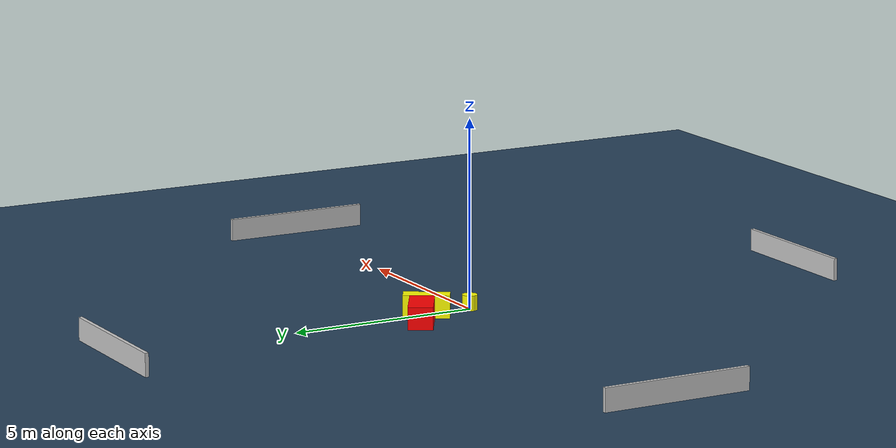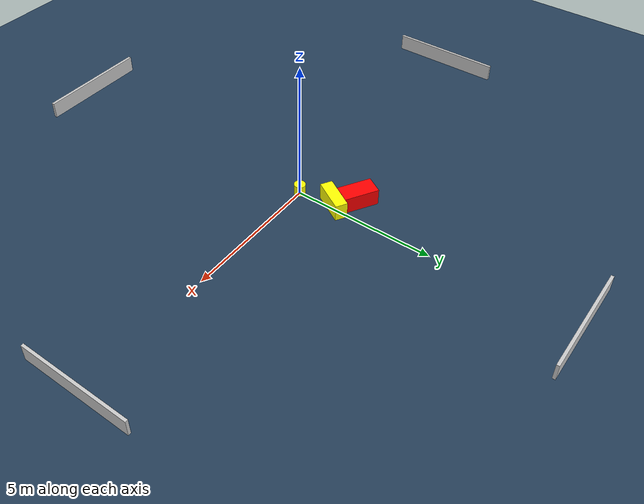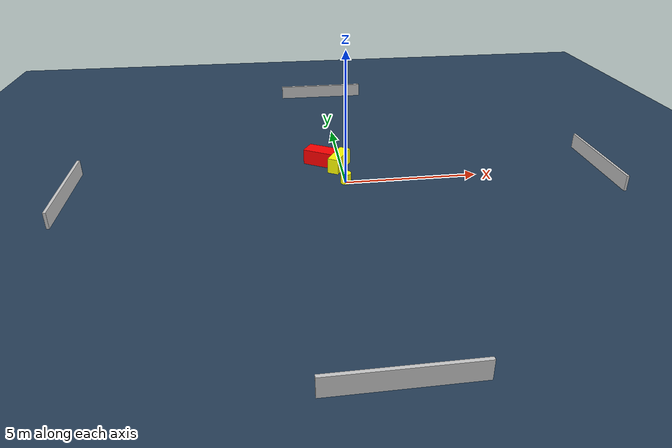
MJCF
<?xml version="1.0" ?>
<mujoco model="generated_environment">
  <option timestep="0.01" integrator="RK4" cone="elliptic"/>
  <default>
    <geom density="1"/>
  </default>
  <asset>
    <texture builtin="gradient" height="3072" name="skybox" rgb1="0.3 0.5 0.7" rgb2="0 0 0" type="skybox" width="512"/>
    <texture builtin="checker" height="300" name="groundplane" rgb1="0.2 0.3 0.4" rgb2="0.1 0.2 0.3" type="2d" width="300"/>
    <material name="groundplane" reflectance="0.2" texrepeat="5 5" texture="groundplane"/>
  </asset>
  <worldbody>
    <light dir="0 0 -1" directional="true" pos="0 0 1.5"/>
    <geom condim="3" friction="0.5 0.005 0.001" material="groundplane" name="floor" pos="0 0 0" size="0 0 0.05" type="plane"/>
    <body name="walls">
      <geom name="wall_1" condim="4" pos="-10.0 0.0 0.3" rgba="0.800000011920929 0.800000011920929 0.800000011920929 1.0" size="0.05 2.0 0.3" type="box"/>
      <geom name="wall_2" condim="4" pos="10.0 0.0 0.3" rgba="0.800000011920929 0.800000011920929 0.800000011920929 1.0" size="0.05 2.0 0.3" type="box"/>
      <geom name="wall_3" condim="4" pos="0.0 -10.0 0.3" rgba="0.800000011920929 0.800000011920929 0.800000011920929 1.0" size="2.0 0.05 0.3" type="box"/>
      <geom name="wall_4" condim="4" pos="0.0 10.0 0.3" rgba="0.800000011920929 0.800000011920929 0.800000011920929 1.0" size="2.0 0.05 0.3" type="box"/>
    </body>
    <body name="robot">
      <joint name="joint_x" type="slide" pos="0 0 0" axis="1 0 0"/>
      <joint name="joint_y" type="slide" pos="0 0 0" axis="0 1 0"/>
      <geom name="robot" type="cylinder" pos="0.0 0.0 0.2" size="0.2 0.2 0.0" mass="5.0" friction="1.0 0.005 0.0001" condim="4" rgba="1.0 1.0 0.0 1.0"/>
    </body>
    <body name="obstacle_1_movable">
      <geom name="obstacle_1_movable" condim="4" pos="-0.09058468944737116 1.319471420707122 0.3" euler="0 0 59.49512942108812" friction="0.0 0.005 0.001" rgba="1.0 1.0 0.0 1.0" size="0.6053850700304708 0.214001814832958 0.3" type="box" mass="0.1"/>
      <joint type="free"/>
    </body>
    <body name="obstacle_2_static">
      <geom name="obstacle_2_static" condim="4" pos="-0.7519104578742449 1.8280021810227913 0.3" euler="0 0 59.43592818199283" friction="0.0 0.005 0.001" rgba="1.0 0.0 0.0 1.0" size="0.32276105094839175 0.612776209433971 0.3" type="box"/>
    </body>
  </worldbody>
  <actuator>
    <motor name="actuator_x" joint="joint_x" gear="1" ctrlrange="-1 1"/>
    <motor name="actuator_y" joint="joint_y" gear="1" ctrlrange="-1 1"/>
  </actuator>
</mujoco>
